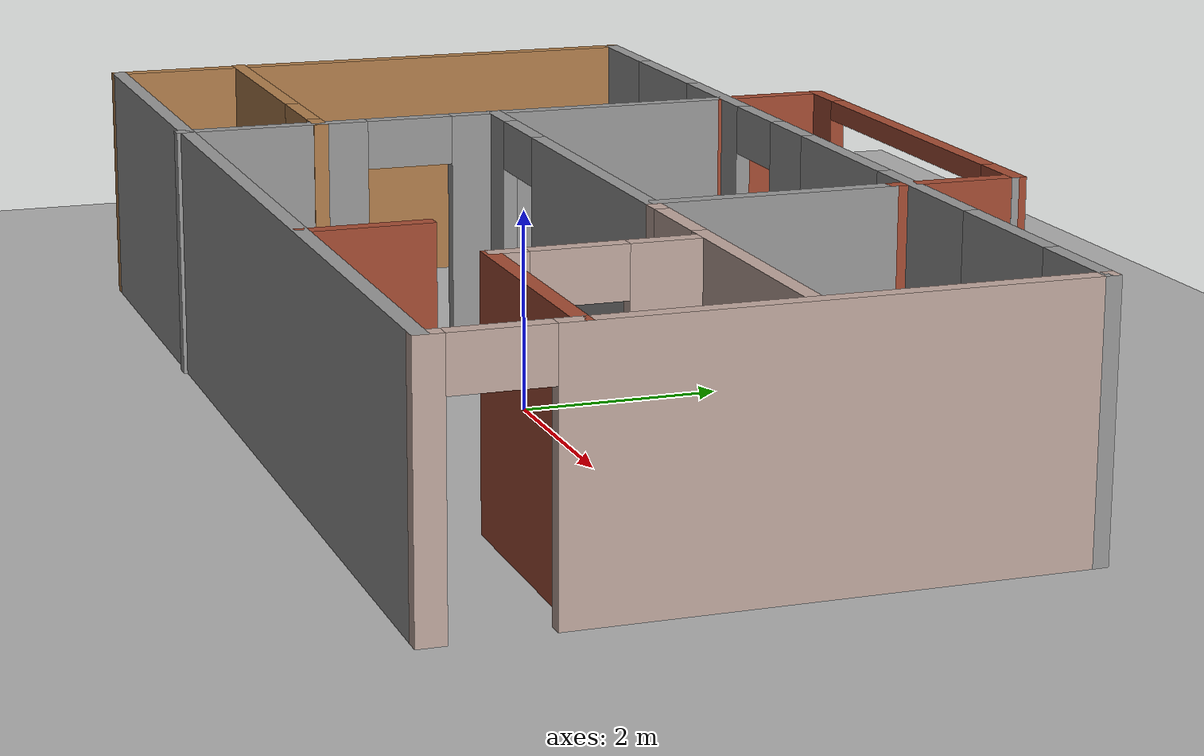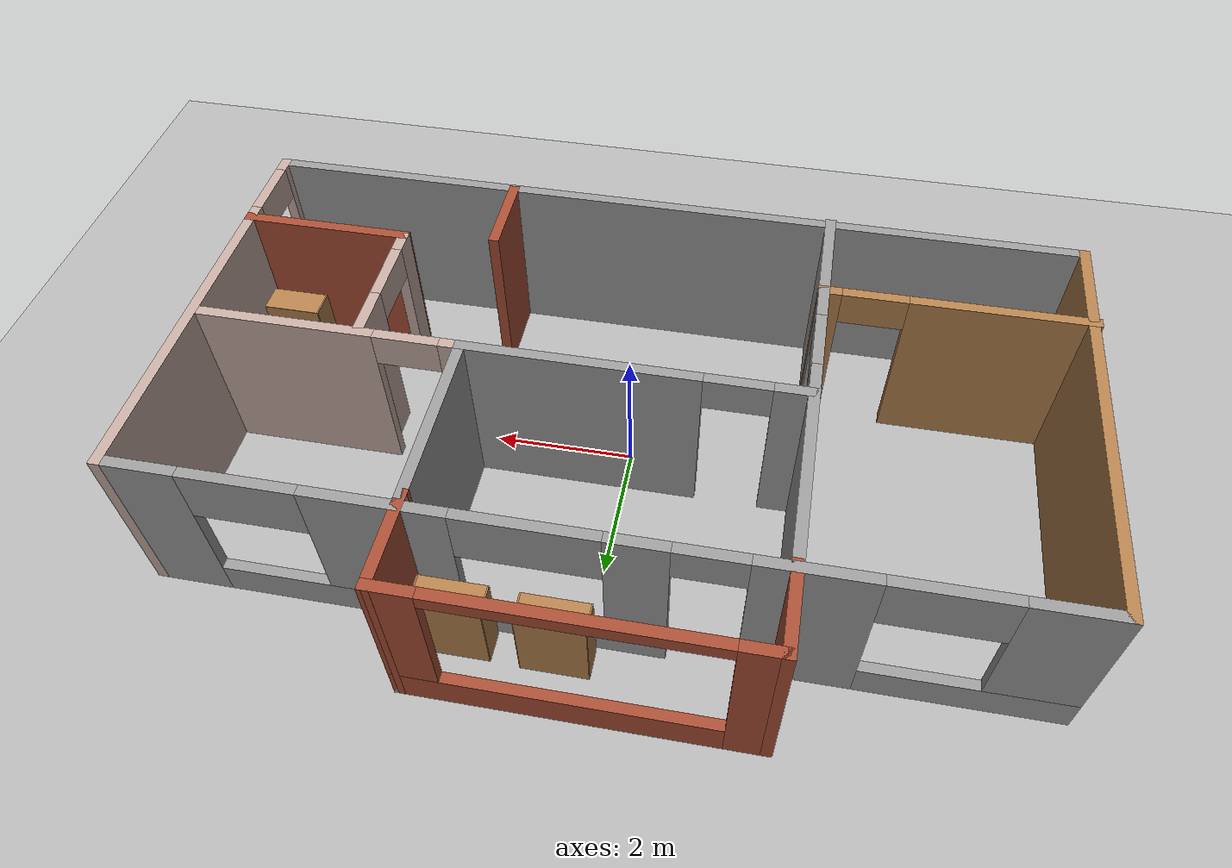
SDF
<sdf version="1.9">
 <world name="default">
  <gravity>0 0 -9.8</gravity>
  <magnetic_field>6e-06 2.3e-05 -4.2e-05</magnetic_field>
  <atmosphere type="adiabatic"/>
  <physics type="ode">
   <max_step_size>0.001</max_step_size>
   <real_time_factor>1</real_time_factor>
   <real_time_update_rate>1000</real_time_update_rate>
  </physics>
  <scene><ambient>0.4 0.4 0.4 1</ambient><background>0.7 0.7 0.7 1</background><shadows>true</shadows></scene>
  <model name="model">
   <pose>-0.072799 0.657395 0 0 -0 0</pose>
   <link name="Wall_0">
    <pose>0.019799 2.41161 0 0 -0 3.14159</pose>
    <visual name="Wall_0_Visual_0">
     <pose>-5.46206 0 1.25 0 -0 0</pose>
     <geometry><box><size>1.07588 0.15 2.5</size></box></geometry>
     <material>
      <script><uri>file://media/materials/scripts/gazebo.material</uri><name>Gazebo/Grey</name></script>
      <ambient>1 1 1 1</ambient>
     </material>
     <meta><layer>0</layer></meta>
    </visual>
    <collision name="Wall_0_Collision_0">
     <geometry><box><size>1.07588 0.15 2.5</size></box></geometry>
     <pose>-5.46206 0 1.25 0 -0 0</pose>
    </collision>
    <visual name="Wall_0_Visual_1">
     <pose>2.60195 0 1.25 0 -0 0</pose>
     <geometry><box><size>1.45849 0.15 2.5</size></box></geometry>
     <material>
      <script><uri>file://media/materials/scripts/gazebo.material</uri><name>Gazebo/Grey</name></script>
      <ambient>1 1 1 1</ambient>
     </material>
     <meta><layer>0</layer></meta>
    </visual>
    <collision name="Wall_0_Collision_1">
     <geometry><box><size>1.45849 0.15 2.5</size></box></geometry>
     <pose>2.60195 0 1.25 0 -0 0</pose>
    </collision>
    <visual name="Wall_0_Visual_2">
     <pose>-1.97571 0 0.25 0 -0 0</pose>
     <geometry><box><size>5.89682 0.15 0.5</size></box></geometry>
     <material>
      <script><uri>file://media/materials/scripts/gazebo.material</uri><name>Gazebo/Grey</name></script>
      <ambient>1 1 1 1</ambient>
     </material>
     <meta><layer>0</layer></meta>
    </visual>
    <collision name="Wall_0_Collision_2">
     <geometry><box><size>5.89682 0.15 0.5</size></box></geometry>
     <pose>-1.97571 0 0.25 0 -0 0</pose>
    </collision>
    <visual name="Wall_0_Visual_3">
     <pose>4.6656 0 0.25 0 -0 0</pose>
     <geometry><box><size>2.66881 0.15 0.5</size></box></geometry>
     <material>
      <script><uri>file://media/materials/scripts/gazebo.material</uri><name>Gazebo/Grey</name></script>
      <ambient>1 1 1 1</ambient>
     </material>
     <meta><layer>0</layer></meta>
    </visual>
    <collision name="Wall_0_Collision_3">
     <geometry><box><size>2.66881 0.15 0.5</size></box></geometry>
     <pose>4.6656 0 0.25 0 -0 0</pose>
    </collision>
    <visual name="Wall_0_Visual_4">
     <pose>-2.5176 0 1.5 0 -0 0</pose>
     <geometry><box><size>1.81303 0.15 2</size></box></geometry>
     <material>
      <script><uri>file://media/materials/scripts/gazebo.material</uri><name>Gazebo/Grey</name></script>
      <ambient>1 1 1 1</ambient>
     </material>
     <meta><layer>0</layer></meta>
    </visual>
    <collision name="Wall_0_Collision_4">
     <geometry><box><size>1.81303 0.15 2</size></box></geometry>
     <pose>-2.5176 0 1.5 0 -0 0</pose>
    </collision>
    <visual name="Wall_0_Visual_5">
     <pose>0.580808 0 1.5 0 -0 0</pose>
     <geometry><box><size>0.783788 0.15 2</size></box></geometry>
     <material>
      <script><uri>file://media/materials/scripts/gazebo.material</uri><name>Gazebo/Grey</name></script>
      <ambient>1 1 1 1</ambient>
     </material>
     <meta><layer>0</layer></meta>
    </visual>
    <collision name="Wall_0_Collision_5">
     <geometry><box><size>0.783788 0.15 2</size></box></geometry>
     <pose>0.580808 0 1.5 0 -0 0</pose>
    </collision>
    <visual name="Wall_0_Visual_6">
     <pose>0.580808 0 1.5 0 -0 0</pose>
     <geometry><box><size>0.783788 0.15 2</size></box></geometry>
     <material>
      <script><uri>file://media/materials/scripts/gazebo.material</uri><name>Gazebo/Grey</name></script>
      <ambient>1 1 1 1</ambient>
     </material>
     <meta><layer>0</layer></meta>
    </visual>
    <collision name="Wall_0_Collision_6">
     <geometry><box><size>0.783788 0.15 2</size></box></geometry>
     <pose>0.580808 0 1.5 0 -0 0</pose>
    </collision>
    <visual name="Wall_0_Visual_7">
     <pose>5.4156 0 1.5 0 -0 0</pose>
     <geometry><box><size>1.16881 0.15 2</size></box></geometry>
     <material>
      <script><uri>file://media/materials/scripts/gazebo.material</uri><name>Gazebo/Grey</name></script>
      <ambient>1 1 1 1</ambient>
     </material>
     <meta><layer>0</layer></meta>
    </visual>
    <collision name="Wall_0_Collision_7">
     <geometry><box><size>1.16881 0.15 2</size></box></geometry>
     <pose>5.4156 0 1.5 0 -0 0</pose>
    </collision>
    <visual name="Wall_0_Visual_8">
     <pose>-4.17412 0 2.1 0 -0 0</pose>
     <geometry><box><size>1.5 0.15 0.8</size></box></geometry>
     <material>
      <script><uri>file://media/materials/scripts/gazebo.material</uri><name>Gazebo/Grey</name></script>
      <ambient>1 1 1 1</ambient>
     </material>
     <meta><layer>0</layer></meta>
    </visual>
    <collision name="Wall_0_Collision_8">
     <geometry><box><size>1.5 0.15 0.8</size></box></geometry>
     <pose>-4.17412 0 2.1 0 -0 0</pose>
    </collision>
    <visual name="Wall_0_Visual_9">
     <pose>4.08119 0 2.1 0 -0 0</pose>
     <geometry><box><size>1.5 0.15 0.8</size></box></geometry>
     <material>
      <script><uri>file://media/materials/scripts/gazebo.material</uri><name>Gazebo/Grey</name></script>
      <ambient>1 1 1 1</ambient>
     </material>
     <meta><layer>0</layer></meta>
    </visual>
    <collision name="Wall_0_Collision_9">
     <geometry><box><size>1.5 0.15 0.8</size></box></geometry>
     <pose>4.08119 0 2.1 0 -0 0</pose>
    </collision>
    <visual name="Wall_0_Visual_10">
     <pose>-0.711086 0 2.1 0 -0 0</pose>
     <geometry><box><size>1.8 0.15 0.8</size></box></geometry>
     <material>
      <script><uri>file://media/materials/scripts/gazebo.material</uri><name>Gazebo/Grey</name></script>
      <ambient>1 1 1 1</ambient>
     </material>
     <meta><layer>0</layer></meta>
    </visual>
    <collision name="Wall_0_Collision_10">
     <geometry><box><size>1.8 0.15 0.8</size></box></geometry>
     <pose>-0.711086 0 2.1 0 -0 0</pose>
    </collision>
    <visual name="Wall_0_Visual_11">
     <pose>1.4227 0 2.25 0 -0 0</pose>
     <geometry><box><size>0.9 0.15 0.5</size></box></geometry>
     <material>
      <script><uri>file://media/materials/scripts/gazebo.material</uri><name>Gazebo/Grey</name></script>
      <ambient>1 1 1 1</ambient>
     </material>
     <meta><layer>0</layer></meta>
    </visual>
    <collision name="Wall_0_Collision_11">
     <geometry><box><size>0.9 0.15 0.5</size></box></geometry>
     <pose>1.4227 0 2.25 0 -0 0</pose>
    </collision>
    <visual name="Wall_0_Visual_12">
     <pose>1.4227 0 2.25 0 -0 0</pose>
     <geometry><box><size>0.9 0.15 0.5</size></box></geometry>
     <material>
      <script><uri>file://media/materials/scripts/gazebo.material</uri><name>Gazebo/Grey</name></script>
      <ambient>1 1 1 1</ambient>
     </material>
     <meta><layer>0</layer></meta>
    </visual>
    <collision name="Wall_0_Collision_12">
     <geometry><box><size>0.9 0.15 0.5</size></box></geometry>
     <pose>1.4227 0 2.25 0 -0 0</pose>
    </collision>
    <inertial>
     <mass>1</mass>
     <inertia><ixx>1</ixx><ixy>0</ixy><ixz>0</ixz><iyy>1</iyy><iyz>0</iyz><izz>1</izz></inertia>
    </inertial>
   </link>
   <link name="Wall_15">
    <pose>3.63468 -1.16614 0 0 0 -1.5708</pose>
    <visual name="Wall_15_Visual_0">
     <pose>-0.627818 0 1.25 0 -0 0</pose>
     <geometry><box><size>0.744364 0.15 2.5</size></box></geometry>
     <material>
      <script><uri>file://media/materials/scripts/gazebo.material</uri><name>Gazebo/Grey</name></script>
      <ambient>0.760784 0.662745 0.627451 1</ambient>
     </material>
     <meta><layer>0</layer></meta>
    </visual>
    <collision name="Wall_15_Collision_0">
     <geometry><box><size>0.744364 0.15 2.5</size></box></geometry>
     <pose>-0.627818 0 1.25 0 -0 0</pose>
    </collision>
    <visual name="Wall_15_Visual_1">
     <pose>0.822182 0 1.25 0 -0 0</pose>
     <geometry><box><size>0.355636 0.15 2.5</size></box></geometry>
     <material>
      <script><uri>file://media/materials/scripts/gazebo.material</uri><name>Gazebo/Grey</name></script>
      <ambient>0.760784 0.662745 0.627451 1</ambient>
     </material>
     <meta><layer>0</layer></meta>
    </visual>
    <collision name="Wall_15_Collision_1">
     <geometry><box><size>0.355636 0.15 2.5</size></box></geometry>
     <pose>0.822182 0 1.25 0 -0 0</pose>
    </collision>
    <visual name="Wall_15_Visual_2">
     <pose>0.194364 0 2.25 0 -0 0</pose>
     <geometry><box><size>0.9 0.15 0.5</size></box></geometry>
     <material>
      <script><uri>file://media/materials/scripts/gazebo.material</uri><name>Gazebo/Grey</name></script>
      <ambient>0.760784 0.662745 0.627451 1</ambient>
     </material>
     <meta><layer>0</layer></meta>
    </visual>
    <collision name="Wall_15_Collision_2">
     <geometry><box><size>0.9 0.15 0.5</size></box></geometry>
     <pose>0.194364 0 2.25 0 -0 0</pose>
    </collision>
    <inertial>
     <mass>1</mass>
     <inertia><ixx>1</ixx><ixy>0</ixy><ixz>0</ixz><iyy>1</iyy><iyz>0</iyz><izz>1</izz></inertia>
    </inertial>
   </link>
   <link name="Wall_16">
    <collision name="Wall_16_Collision">
     <geometry><box><size>2.45988 0.15 2.5</size></box></geometry>
     <pose>0 0 1.25 0 -0 0</pose>
    </collision>
    <visual name="Wall_16_Visual">
     <pose>0 0 1.25 0 -0 0</pose>
     <geometry><box><size>2.45988 0.15 2.5</size></box></geometry>
     <material>
      <script><uri>file://media/materials/scripts/gazebo.material</uri><name>Gazebo/Bricks</name></script>
      <ambient>1 1 1 1</ambient>
     </material>
     <meta><layer>0</layer></meta>
    </visual>
    <pose>4.78962 -2.12612 0 0 -0 0</pose>
    <inertial>
     <mass>1</mass>
     <inertia><ixx>1</ixx><ixy>0</ixy><ixz>0</ixz><iyy>1</iyy><iyz>0</iyz><izz>1</izz></inertia>
    </inertial>
   </link>
   <link name="Wall_2">
    <collision name="Wall_2_Collision">
     <geometry><box><size>6 0.15 2.5</size></box></geometry>
     <pose>0 0 1.25 0 -0 0</pose>
    </collision>
    <visual name="Wall_2_Visual">
     <pose>0 0 1.25 0 -0 0</pose>
     <geometry><box><size>6 0.15 2.5</size></box></geometry>
     <material>
      <script><uri>file://media/materials/scripts/gazebo.material</uri><name>Gazebo/Wood</name></script>
      <ambient>1 1 1 1</ambient>
     </material>
     <meta><layer>0</layer></meta>
    </visual>
    <pose>-5.9052 -0.513395 0 0 0 -1.5708</pose>
    <inertial>
     <mass>1</mass>
     <inertia><ixx>1</ixx><ixy>0</ixy><ixz>0</ixz><iyy>1</iyy><iyz>0</iyz><izz>1</izz></inertia>
    </inertial>
   </link>
   <link name="Wall_24">
    <collision name="Wall_24_Collision">
     <geometry><box><size>2.5 0.15 2.5</size></box></geometry>
     <pose>0 0 1.25 0 -0 0</pose>
    </collision>
    <visual name="Wall_24_Visual">
     <pose>0 0 1.25 0 -0 0</pose>
     <geometry><box><size>2.5 0.15 2.5</size></box></geometry>
     <material>
      <script><uri>file://media/materials/scripts/gazebo.material</uri><name>Gazebo/Grey</name></script>
      <ambient>1 1 1 1</ambient>
     </material>
     <meta><layer>0</layer></meta>
    </visual>
    <pose>2.23564 1.06753 0 0 0 -1.57093</pose>
    <inertial>
     <mass>1</mass>
     <inertia><ixx>1</ixx><ixy>0</ixy><ixz>0</ixz><iyy>1</iyy><iyz>0</iyz><izz>1</izz></inertia>
    </inertial>
   </link>
   <link name="Wall_26">
    <collision name="Wall_26_Collision">
     <geometry><box><size>1.25 0.15 2.5</size></box></geometry>
     <pose>0 0 1.25 0 -0 0</pose>
    </collision>
    <visual name="Wall_26_Visual">
     <pose>0 0 1.25 0 -0 0</pose>
     <geometry><box><size>1.25 0.15 2.5</size></box></geometry>
     <material>
      <script><uri>file://media/materials/scripts/gazebo.material</uri><name>Gazebo/Bricks</name></script>
      <ambient>1 1 1 1</ambient>
     </material>
     <meta><layer>0</layer></meta>
    </visual>
    <pose>2.34042 -2.86011 0 0 0 -1.5708</pose>
    <inertial>
     <mass>1</mass>
     <inertia><ixx>1</ixx><ixy>0</ixy><ixz>0</ixz><iyy>1</iyy><iyz>0</iyz><izz>1</izz></inertia>
    </inertial>
   </link>
   <link name="Wall_28">
    <collision name="Wall_28_Collision">
     <geometry><box><size>1.25 0.15 2.5</size></box></geometry>
     <pose>0 0 1.25 0 -0 0</pose>
    </collision>
    <visual name="Wall_28_Visual">
     <pose>0 0 1.25 0 -0 0</pose>
     <geometry><box><size>1.25 0.15 2.5</size></box></geometry>
     <material>
      <script><uri>file://media/materials/scripts/gazebo.material</uri><name>Gazebo/Bricks</name></script>
      <ambient>1 1 1 1</ambient>
     </material>
     <meta><layer>0</layer></meta>
    </visual>
    <pose>-2.3542 2.92461 0 0 -0 1.5708</pose>
    <inertial>
     <mass>1</mass>
     <inertia><ixx>1</ixx><ixy>0</ixy><ixz>0</ixz><iyy>1</iyy><iyz>0</iyz><izz>1</izz></inertia>
    </inertial>
   </link>
   <link name="Wall_29">
    <pose>-0.054201 3.4746 0 0 -0 0</pose>
    <visual name="Wall_29_Visual_0">
     <pose>-2.0721 0 1.25 0 -0 0</pose>
     <geometry><box><size>0.605802 0.15 2.5</size></box></geometry>
     <material>
      <script><uri>file://media/materials/scripts/gazebo.material</uri><name>Gazebo/Bricks</name></script>
      <ambient>1 1 1 1</ambient>
     </material>
     <meta><layer>0</layer></meta>
    </visual>
    <collision name="Wall_29_Collision_0">
     <geometry><box><size>0.605802 0.15 2.5</size></box></geometry>
     <pose>-2.0721 0 1.25 0 -0 0</pose>
    </collision>
    <visual name="Wall_29_Visual_1">
     <pose>0.302901 0 0.25 0 -0 0</pose>
     <geometry><box><size>4.1442 0.15 0.5</size></box></geometry>
     <material>
      <script><uri>file://media/materials/scripts/gazebo.material</uri><name>Gazebo/Bricks</name></script>
      <ambient>1 1 1 1</ambient>
     </material>
     <meta><layer>0</layer></meta>
    </visual>
    <collision name="Wall_29_Collision_1">
     <geometry><box><size>4.1442 0.15 0.5</size></box></geometry>
     <pose>0.302901 0 0.25 0 -0 0</pose>
    </collision>
    <visual name="Wall_29_Visual_2">
     <pose>2.0529 0 1.5 0 -0 0</pose>
     <geometry><box><size>0.644198 0.15 2</size></box></geometry>
     <material>
      <script><uri>file://media/materials/scripts/gazebo.material</uri><name>Gazebo/Bricks</name></script>
      <ambient>1 1 1 1</ambient>
     </material>
     <meta><layer>0</layer></meta>
    </visual>
    <collision name="Wall_29_Collision_2">
     <geometry><box><size>0.644198 0.15 2</size></box></geometry>
     <pose>2.0529 0 1.5 0 -0 0</pose>
    </collision>
    <visual name="Wall_29_Visual_3">
     <pose>-0.019198 0 2.4 0 -0 0</pose>
     <geometry><box><size>3.5 0.15 0.2</size></box></geometry>
     <material>
      <script><uri>file://media/materials/scripts/gazebo.material</uri><name>Gazebo/Bricks</name></script>
      <ambient>1 1 1 1</ambient>
     </material>
     <meta><layer>0</layer></meta>
    </visual>
    <collision name="Wall_29_Collision_3">
     <geometry><box><size>3.5 0.15 0.2</size></box></geometry>
     <pose>-0.019198 0 2.4 0 -0 0</pose>
    </collision>
    <inertial>
     <mass>1</mass>
     <inertia><ixx>1</ixx><ixy>0</ixy><ixz>0</ixz><iyy>1</iyy><iyz>0</iyz><izz>1</izz></inertia>
    </inertial>
   </link>
   <link name="Wall_3">
    <collision name="Wall_3_Collision">
     <geometry><box><size>12 0.15 2.5</size></box></geometry>
     <pose>0 0 1.25 0 -0 0</pose>
    </collision>
    <visual name="Wall_3_Visual">
     <pose>0 0 1.25 0 -0 0</pose>
     <geometry><box><size>12 0.15 2.5</size></box></geometry>
     <material>
      <script><uri>file://media/materials/scripts/gazebo.material</uri><name>Gazebo/Grey</name></script>
      <ambient>1 1 1 1</ambient>
     </material>
     <meta><layer>0</layer></meta>
    </visual>
    <pose>0.019799 -3.43839 0 0 -0 0</pose>
    <inertial>
     <mass>1</mass>
     <inertia><ixx>1</ixx><ixy>0</ixy><ixz>0</ixz><iyy>1</iyy><iyz>0</iyz><izz>1</izz></inertia>
    </inertial>
   </link>
   <link name="Wall_30">
    <collision name="Wall_30_Collision">
     <geometry><box><size>0.15 0.15 2.5</size></box></geometry>
     <pose>0 0 1.25 0 -0 0</pose>
    </collision>
    <visual name="Wall_30_Visual">
     <pose>0 0 1.25 0 -0 0</pose>
     <geometry><box><size>0.15 0.15 2.5</size></box></geometry>
     <material>
      <script><uri>file://media/materials/scripts/gazebo.material</uri><name>Gazebo/Grey</name></script>
      <ambient>1 1 1 1</ambient>
     </material>
     <meta><layer>0</layer></meta>
    </visual>
    <pose>2.2458 3.4746 0 0 -0 0</pose>
    <inertial>
     <mass>1</mass>
     <inertia><ixx>1</ixx><ixy>0</ixy><ixz>0</ixz><iyy>1</iyy><iyz>0</iyz><izz>1</izz></inertia>
    </inertial>
   </link>
   <link name="Wall_32">
    <collision name="Wall_32_Collision">
     <geometry><box><size>1.38231 0.15 2.5</size></box></geometry>
     <pose>0 0 1.25 0 -0 0</pose>
    </collision>
    <visual name="Wall_32_Visual">
     <pose>0 0 1.25 0 -0 0</pose>
     <geometry><box><size>1.38231 0.15 2.5</size></box></geometry>
     <material>
      <script><uri>file://media/materials/scripts/gazebo.material</uri><name>Gazebo/Bricks</name></script>
      <ambient>1 1 1 1</ambient>
     </material>
     <meta><layer>0</layer></meta>
    </visual>
    <pose>2.2408 2.8586 0 0 0 -1.57891</pose>
    <inertial>
     <mass>1</mass>
     <inertia><ixx>1</ixx><ixy>0</ixy><ixz>0</ixz><iyy>1</iyy><iyz>0</iyz><izz>1</izz></inertia>
    </inertial>
   </link>
   <link name="Wall_34">
    <pose>4.07341 -0.17118 0 0 -0 3.14159</pose>
    <visual name="Wall_34_Visual_0">
     <pose>-0.610825 0 1.25 0 -0 0</pose>
     <geometry><box><size>2.52835 0.15 2.5</size></box></geometry>
     <material>
      <script><uri>file://media/materials/scripts/gazebo.material</uri><name>Gazebo/Grey</name></script>
      <ambient>0.760784 0.662745 0.627451 1</ambient>
     </material>
     <meta><layer>0</layer></meta>
    </visual>
    <collision name="Wall_34_Collision_0">
     <geometry><box><size>2.52835 0.15 2.5</size></box></geometry>
     <pose>-0.610825 0 1.25 0 -0 0</pose>
    </collision>
    <visual name="Wall_34_Visual_1">
     <pose>1.71418 0 1.25 0 -0 0</pose>
     <geometry><box><size>0.32165 0.15 2.5</size></box></geometry>
     <material>
      <script><uri>file://media/materials/scripts/gazebo.material</uri><name>Gazebo/Grey</name></script>
      <ambient>0.760784 0.662745 0.627451 1</ambient>
     </material>
     <meta><layer>0</layer></meta>
    </visual>
    <collision name="Wall_34_Collision_1">
     <geometry><box><size>0.32165 0.15 2.5</size></box></geometry>
     <pose>1.71418 0 1.25 0 -0 0</pose>
    </collision>
    <visual name="Wall_34_Visual_2">
     <pose>1.10335 0 2.25 0 -0 0</pose>
     <geometry><box><size>0.9 0.15 0.5</size></box></geometry>
     <material>
      <script><uri>file://media/materials/scripts/gazebo.material</uri><name>Gazebo/Grey</name></script>
      <ambient>0.760784 0.662745 0.627451 1</ambient>
     </material>
     <meta><layer>0</layer></meta>
    </visual>
    <collision name="Wall_34_Collision_2">
     <geometry><box><size>0.9 0.15 0.5</size></box></geometry>
     <pose>1.10335 0 2.25 0 -0 0</pose>
    </collision>
    <inertial>
     <mass>1</mass>
     <inertia><ixx>1</ixx><ixy>0</ixy><ixz>0</ixz><iyy>1</iyy><iyz>0</iyz><izz>1</izz></inertia>
    </inertial>
   </link>
   <link name="Wall_35">
    <pose>-0.06157 -0.17118 0 0 -0 3.14159</pose>
    <visual name="Wall_35_Visual_0">
     <pose>-0.742057 0 1.25 0 -0 0</pose>
     <geometry><box><size>3.26589 0.15 2.5</size></box></geometry>
     <material>
      <script><uri>file://media/materials/scripts/gazebo.material</uri><name>Gazebo/Grey</name></script>
      <ambient>1 1 1 1</ambient>
     </material>
     <meta><layer>0</layer></meta>
    </visual>
    <collision name="Wall_35_Collision_0">
     <geometry><box><size>3.26589 0.15 2.5</size></box></geometry>
     <pose>-0.742057 0 1.25 0 -0 0</pose>
    </collision>
    <visual name="Wall_35_Visual_1">
     <pose>2.08294 0 1.25 0 -0 0</pose>
     <geometry><box><size>0.584114 0.15 2.5</size></box></geometry>
     <material>
      <script><uri>file://media/materials/scripts/gazebo.material</uri><name>Gazebo/Grey</name></script>
      <ambient>1 1 1 1</ambient>
     </material>
     <meta><layer>0</layer></meta>
    </visual>
    <collision name="Wall_35_Collision_1">
     <geometry><box><size>0.584114 0.15 2.5</size></box></geometry>
     <pose>2.08294 0 1.25 0 -0 0</pose>
    </collision>
    <visual name="Wall_35_Visual_2">
     <pose>1.34089 0 2.25 0 -0 0</pose>
     <geometry><box><size>0.9 0.15 0.5</size></box></geometry>
     <material>
      <script><uri>file://media/materials/scripts/gazebo.material</uri><name>Gazebo/Grey</name></script>
      <ambient>1 1 1 1</ambient>
     </material>
     <meta><layer>0</layer></meta>
    </visual>
    <collision name="Wall_35_Collision_2">
     <geometry><box><size>0.9 0.15 0.5</size></box></geometry>
     <pose>1.34089 0 2.25 0 -0 0</pose>
    </collision>
    <inertial>
     <mass>1</mass>
     <inertia><ixx>1</ixx><ixy>0</ixy><ixz>0</ixz><iyy>1</iyy><iyz>0</iyz><izz>1</izz></inertia>
    </inertial>
   </link>
   <link name="Wall_4">
    <pose>5.9448 -0.513395 0 0 -0 1.5708</pose>
    <visual name="Wall_4_Visual_0">
     <pose>-2.8658 0 1.25 0 -0 0</pose>
     <geometry><box><size>0.268399 0.15 2.5</size></box></geometry>
     <material>
      <script><uri>file://media/materials/scripts/gazebo.material</uri><name>Gazebo/Grey</name></script>
      <ambient>0.760784 0.662745 0.627451 1</ambient>
     </material>
     <meta><layer>0</layer></meta>
    </visual>
    <collision name="Wall_4_Collision_0">
     <geometry><box><size>0.268399 0.15 2.5</size></box></geometry>
     <pose>-2.8658 0 1.25 0 -0 0</pose>
    </collision>
    <visual name="Wall_4_Visual_1">
     <pose>0.584199 0 1.25 0 -0 0</pose>
     <geometry><box><size>4.8316 0.15 2.5</size></box></geometry>
     <material>
      <script><uri>file://media/materials/scripts/gazebo.material</uri><name>Gazebo/Grey</name></script>
      <ambient>0.760784 0.662745 0.627451 1</ambient>
     </material>
     <meta><layer>0</layer></meta>
    </visual>
    <collision name="Wall_4_Collision_1">
     <geometry><box><size>4.8316 0.15 2.5</size></box></geometry>
     <pose>0.584199 0 1.25 0 -0 0</pose>
    </collision>
    <visual name="Wall_4_Visual_2">
     <pose>-2.2816 0 2.25 0 -0 0</pose>
     <geometry><box><size>0.9 0.15 0.5</size></box></geometry>
     <material>
      <script><uri>file://media/materials/scripts/gazebo.material</uri><name>Gazebo/Grey</name></script>
      <ambient>0.760784 0.662745 0.627451 1</ambient>
     </material>
     <meta><layer>0</layer></meta>
    </visual>
    <collision name="Wall_4_Collision_2">
     <geometry><box><size>0.9 0.15 0.5</size></box></geometry>
     <pose>-2.2816 0 2.25 0 -0 0</pose>
    </collision>
    <inertial>
     <mass>1</mass>
     <inertia><ixx>1</ixx><ixy>0</ixy><ixz>0</ixz><iyy>1</iyy><iyz>0</iyz><izz>1</izz></inertia>
    </inertial>
   </link>
   <link name="Wall_6">
    <pose>-2.35411 -0.550342 0 0 0 -1.57076</pose>
    <visual name="Wall_6_Visual_0">
     <pose>-1.44227 0 1.25 0 -0 0</pose>
     <geometry><box><size>3.11546 0.15 2.5</size></box></geometry>
     <material>
      <script><uri>file://media/materials/scripts/gazebo.material</uri><name>Gazebo/Grey</name></script>
      <ambient>1 1 1 1</ambient>
     </material>
     <meta><layer>0</layer></meta>
    </visual>
    <collision name="Wall_6_Collision_0">
     <geometry><box><size>3.11546 0.15 2.5</size></box></geometry>
     <pose>-1.44227 0 1.25 0 -0 0</pose>
    </collision>
    <visual name="Wall_6_Visual_1">
     <pose>2.00773 0 1.25 0 -0 0</pose>
     <geometry><box><size>1.98454 0.15 2.5</size></box></geometry>
     <material>
      <script><uri>file://media/materials/scripts/gazebo.material</uri><name>Gazebo/Grey</name></script>
      <ambient>1 1 1 1</ambient>
     </material>
     <meta><layer>0</layer></meta>
    </visual>
    <collision name="Wall_6_Collision_1">
     <geometry><box><size>1.98454 0.15 2.5</size></box></geometry>
     <pose>2.00773 0 1.25 0 -0 0</pose>
    </collision>
    <visual name="Wall_6_Visual_2">
     <pose>0.565456 0 2.25 0 -0 0</pose>
     <geometry><box><size>0.9 0.15 0.5</size></box></geometry>
     <material>
      <script><uri>file://media/materials/scripts/gazebo.material</uri><name>Gazebo/Grey</name></script>
      <ambient>1 1 1 1</ambient>
     </material>
     <meta><layer>0</layer></meta>
    </visual>
    <collision name="Wall_6_Collision_2">
     <geometry><box><size>0.9 0.15 0.5</size></box></geometry>
     <pose>0.565456 0 2.25 0 -0 0</pose>
    </collision>
    <inertial>
     <mass>1</mass>
     <inertia><ixx>1</ixx><ixy>0</ixy><ixz>0</ixz><iyy>1</iyy><iyz>0</iyz><izz>1</izz></inertia>
    </inertial>
   </link>
   <link name="Wall_8">
    <pose>-4.1448 -2.06168 0 0 -0 0</pose>
    <visual name="Wall_8_Visual_0">
     <pose>-0.613361 0 1.25 0 -0 0</pose>
     <geometry><box><size>2.52328 0.15 2.5</size></box></geometry>
     <material>
      <script><uri>file://media/materials/scripts/gazebo.material</uri><name>Gazebo/Wood</name></script>
      <ambient>1 1 1 1</ambient>
     </material>
     <meta><layer>0</layer></meta>
    </visual>
    <collision name="Wall_8_Collision_0">
     <geometry><box><size>2.52328 0.15 2.5</size></box></geometry>
     <pose>-0.613361 0 1.25 0 -0 0</pose>
    </collision>
    <visual name="Wall_8_Visual_1">
     <pose>1.71164 0 1.25 0 -0 0</pose>
     <geometry><box><size>0.326722 0.15 2.5</size></box></geometry>
     <material>
      <script><uri>file://media/materials/scripts/gazebo.material</uri><name>Gazebo/Wood</name></script>
      <ambient>1 1 1 1</ambient>
     </material>
     <meta><layer>0</layer></meta>
    </visual>
    <collision name="Wall_8_Collision_1">
     <geometry><box><size>0.326722 0.15 2.5</size></box></geometry>
     <pose>1.71164 0 1.25 0 -0 0</pose>
    </collision>
    <visual name="Wall_8_Visual_2">
     <pose>1.09828 0 2.25 0 -0 0</pose>
     <geometry><box><size>0.9 0.15 0.5</size></box></geometry>
     <material>
      <script><uri>file://media/materials/scripts/gazebo.material</uri><name>Gazebo/Wood</name></script>
      <ambient>1 1 1 1</ambient>
     </material>
     <meta><layer>0</layer></meta>
    </visual>
    <collision name="Wall_8_Collision_2">
     <geometry><box><size>0.9 0.15 0.5</size></box></geometry>
     <pose>1.09828 0 2.25 0 -0 0</pose>
    </collision>
    <inertial>
     <mass>1</mass>
     <inertia><ixx>1</ixx><ixy>0</ixy><ixz>0</ixz><iyy>1</iyy><iyz>0</iyz><izz>1</izz></inertia>
    </inertial>
   </link>
   <static>true</static>
  </model>
  <model name="ground_plane">
   <static>true</static>
   <link name="link">
    <collision name="collision">
     <geometry><plane><normal>0 0 1</normal><size>100 100</size></plane></geometry>
     <surface><friction><ode><mu>100</mu><mu2>50</mu2></ode></friction></surface>
    </collision>
    <visual name="visual">
     <cast_shadows>false</cast_shadows>
     <geometry><plane><normal>0 0 1</normal><size>100 100</size></plane></geometry>
     <material>
      <ambient>0.3 0.3 0.3 1</ambient>
      <diffuse>0.7 0.7 0.7 1</diffuse>
      <specular>0.01 0.01 0.01 1</specular>
     </material>
    </visual>
    <inertial>
     <mass>1</mass>
     <inertia><ixx>1</ixx><ixy>0</ixy><ixz>0</ixz><iyy>1</iyy><iyz>0</iyz><izz>1</izz></inertia>
    </inertial>
   </link>
   <pose>1.96033 -1.20822 0 0 -0 0</pose>
  </model>
  <model name="Bookshelf">
   <static>true</static>
   <link name="link">
    <inertial>
     <mass>1</mass>
     <inertia><ixx>1</ixx><ixy>0</ixy><ixz>0</ixz><iyy>1</iyy><iyz>0</iyz><izz>1</izz></inertia>
    </inertial>
    <collision name="back">
     <pose>0 0.005 0.6 0 0 0</pose>
     <geometry><box><size>0.9 0.01 1.2</size></box></geometry>
    </collision>
    <visual name="visual1">
     <pose>0 0.005 0.6 0 0 0</pose>
     <geometry><box><size>0.9 0.01 1.2</size></box></geometry>
     <material>
      <diffuse>1 1 1 1</diffuse>
      <script><uri>file://media/materials/scripts/gazebo.material</uri><name>Gazebo/Wood</name></script>
      <pbr>
       <metal>
        <albedo_map>https://fuel.gazebosim.org/1.0/openrobotics/models/bookshelf/4/files/bookshelf_diffuse.jpg</albedo_map>
       </metal>
      </pbr>
     </material>
    </visual>
    <collision name="left_side">
     <pose>0.45 -0.195 0.6 0 0 0</pose>
     <geometry><box><size>0.02 0.4 1.2</size></box></geometry>
    </collision>
    <visual name="visual2">
     <pose>0.45 -0.195 0.6 0 0 0</pose>
     <geometry><box><size>0.02 0.4 1.2</size></box></geometry>
     <material>
      <diffuse>1 1 1 1</diffuse>
      <script><uri>file://media/materials/scripts/gazebo.material</uri><name>Gazebo/Wood</name></script>
      <pbr>
       <metal>
        <albedo_map>https://fuel.gazebosim.org/1.0/openrobotics/models/bookshelf/4/files/bookshelf_diffuse.jpg</albedo_map>
       </metal>
      </pbr>
     </material>
    </visual>
    <collision name="right_side">
     <pose>-0.45 -0.195 0.6 0 0 0</pose>
     <geometry><box><size>0.02 0.4 1.2</size></box></geometry>
    </collision>
    <visual name="visual3">
     <pose>-0.45 -0.195 0.6 0 0 0</pose>
     <geometry><box><size>0.02 0.4 1.2</size></box></geometry>
     <material>
      <diffuse>1 1 1 1</diffuse>
      <script><uri>file://media/materials/scripts/gazebo.material</uri><name>Gazebo/Wood</name></script>
      <pbr>
       <metal>
        <albedo_map>https://fuel.gazebosim.org/1.0/openrobotics/models/bookshelf/4/files/bookshelf_diffuse.jpg</albedo_map>
       </metal>
      </pbr>
     </material>
    </visual>
    <collision name="bottom">
     <pose>0 -0.195 0.03 0 0 0</pose>
     <geometry><box><size>0.88 0.4 0.06</size></box></geometry>
    </collision>
    <visual name="visual4">
     <pose>0 -0.195 0.03 0 0 0</pose>
     <geometry><box><size>0.88 0.4 0.06</size></box></geometry>
     <material>
      <diffuse>1 1 1 1</diffuse>
      <script><uri>file://media/materials/scripts/gazebo.material</uri><name>Gazebo/Wood</name></script>
      <pbr>
       <metal>
        <albedo_map>https://fuel.gazebosim.org/1.0/openrobotics/models/bookshelf/4/files/bookshelf_diffuse.jpg</albedo_map>
       </metal>
      </pbr>
     </material>
    </visual>
    <collision name="top">
     <pose>0 -0.195 1.19 0 0 0</pose>
     <geometry><box><size>0.88 0.4 0.02</size></box></geometry>
    </collision>
    <visual name="visual5">
     <pose>0 -0.195 1.19 0 0 0</pose>
     <geometry><box><size>0.88 0.4 0.02</size></box></geometry>
     <material>
      <diffuse>1 1 1 1</diffuse>
      <script><uri>file://media/materials/scripts/gazebo.material</uri><name>Gazebo/Wood</name></script>
      <pbr>
       <metal>
        <albedo_map>https://fuel.gazebosim.org/1.0/openrobotics/models/bookshelf/4/files/bookshelf_diffuse.jpg</albedo_map>
       </metal>
      </pbr>
     </material>
    </visual>
    <collision name="low_shelf">
     <pose>0 -0.195 0.43 0 0 0</pose>
     <geometry><box><size>0.88 0.4 0.02</size></box></geometry>
    </collision>
    <visual name="visual6">
     <pose>0 -0.195 0.43 0 0 0</pose>
     <geometry><box><size>0.88 0.4 0.02</size></box></geometry>
     <material>
      <diffuse>1 1 1 1</diffuse>
      <script><uri>file://media/materials/scripts/gazebo.material</uri><name>Gazebo/Wood</name></script>
      <pbr>
       <metal>
        <albedo_map>https://fuel.gazebosim.org/1.0/openrobotics/models/bookshelf/4/files/bookshelf_diffuse.jpg</albedo_map>
       </metal>
      </pbr>
     </material>
    </visual>
    <collision name="high_shelf">
     <pose>0 -0.195 0.8 0 0 0</pose>
     <geometry><box><size>0.88 0.4 0.02</size></box></geometry>
    </collision>
    <visual name="visual7">
     <pose>0 -0.195 0.8 0 0 0</pose>
     <geometry><box><size>0.88 0.4 0.02</size></box></geometry>
     <material>
      <diffuse>1 1 1 1</diffuse>
      <script><uri>file://media/materials/scripts/gazebo.material</uri><name>Gazebo/Wood</name></script>
      <pbr>
       <metal>
        <albedo_map>https://fuel.gazebosim.org/1.0/openrobotics/models/bookshelf/4/files/bookshelf_diffuse.jpg</albedo_map>
       </metal>
      </pbr>
     </material>
    </visual>
   </link>
   <pose>2.77616 2.89925 0 0 -0 0</pose>
  </model>
  <model name="Bookshelf_0">
   <static>true</static>
   <link name="link">
    <inertial>
     <mass>1</mass>
     <inertia><ixx>1</ixx><ixy>0</ixy><ixz>0</ixz><iyy>1</iyy><iyz>0</iyz><izz>1</izz></inertia>
    </inertial>
    <collision name="back">
     <pose>0 0.005 0.6 0 0 0</pose>
     <geometry><box><size>0.9 0.01 1.2</size></box></geometry>
    </collision>
    <visual name="visual1">
     <pose>0 0.005 0.6 0 0 0</pose>
     <geometry><box><size>0.9 0.01 1.2</size></box></geometry>
     <material>
      <diffuse>1 1 1 1</diffuse>
      <script><uri>file://media/materials/scripts/gazebo.material</uri><name>Gazebo/Wood</name></script>
      <pbr>
       <metal>
        <albedo_map>https://fuel.gazebosim.org/1.0/openrobotics/models/bookshelf/4/files/bookshelf_diffuse.jpg</albedo_map>
       </metal>
      </pbr>
     </material>
    </visual>
    <collision name="left_side">
     <pose>0.45 -0.195 0.6 0 0 0</pose>
     <geometry><box><size>0.02 0.4 1.2</size></box></geometry>
    </collision>
    <visual name="visual2">
     <pose>0.45 -0.195 0.6 0 0 0</pose>
     <geometry><box><size>0.02 0.4 1.2</size></box></geometry>
     <material>
      <diffuse>1 1 1 1</diffuse>
      <script><uri>file://media/materials/scripts/gazebo.material</uri><name>Gazebo/Wood</name></script>
      <pbr>
       <metal>
        <albedo_map>https://fuel.gazebosim.org/1.0/openrobotics/models/bookshelf/4/files/bookshelf_diffuse.jpg</albedo_map>
       </metal>
      </pbr>
     </material>
    </visual>
    <collision name="right_side">
     <pose>-0.45 -0.195 0.6 0 0 0</pose>
     <geometry><box><size>0.02 0.4 1.2</size></box></geometry>
    </collision>
    <visual name="visual3">
     <pose>-0.45 -0.195 0.6 0 0 0</pose>
     <geometry><box><size>0.02 0.4 1.2</size></box></geometry>
     <material>
      <diffuse>1 1 1 1</diffuse>
      <script><uri>file://media/materials/scripts/gazebo.material</uri><name>Gazebo/Wood</name></script>
      <pbr>
       <metal>
        <albedo_map>https://fuel.gazebosim.org/1.0/openrobotics/models/bookshelf/4/files/bookshelf_diffuse.jpg</albedo_map>
       </metal>
      </pbr>
     </material>
    </visual>
    <collision name="bottom">
     <pose>0 -0.195 0.03 0 0 0</pose>
     <geometry><box><size>0.88 0.4 0.06</size></box></geometry>
    </collision>
    <visual name="visual4">
     <pose>0 -0.195 0.03 0 0 0</pose>
     <geometry><box><size>0.88 0.4 0.06</size></box></geometry>
     <material>
      <diffuse>1 1 1 1</diffuse>
      <script><uri>file://media/materials/scripts/gazebo.material</uri><name>Gazebo/Wood</name></script>
      <pbr>
       <metal>
        <albedo_map>https://fuel.gazebosim.org/1.0/openrobotics/models/bookshelf/4/files/bookshelf_diffuse.jpg</albedo_map>
       </metal>
      </pbr>
     </material>
    </visual>
    <collision name="top">
     <pose>0 -0.195 1.19 0 0 0</pose>
     <geometry><box><size>0.88 0.4 0.02</size></box></geometry>
    </collision>
    <visual name="visual5">
     <pose>0 -0.195 1.19 0 0 0</pose>
     <geometry><box><size>0.88 0.4 0.02</size></box></geometry>
     <material>
      <diffuse>1 1 1 1</diffuse>
      <script><uri>file://media/materials/scripts/gazebo.material</uri><name>Gazebo/Wood</name></script>
      <pbr>
       <metal>
        <albedo_map>https://fuel.gazebosim.org/1.0/openrobotics/models/bookshelf/4/files/bookshelf_diffuse.jpg</albedo_map>
       </metal>
      </pbr>
     </material>
    </visual>
    <collision name="low_shelf">
     <pose>0 -0.195 0.43 0 0 0</pose>
     <geometry><box><size>0.88 0.4 0.02</size></box></geometry>
    </collision>
    <visual name="visual6">
     <pose>0 -0.195 0.43 0 0 0</pose>
     <geometry><box><size>0.88 0.4 0.02</size></box></geometry>
     <material>
      <diffuse>1 1 1 1</diffuse>
      <script><uri>file://media/materials/scripts/gazebo.material</uri><name>Gazebo/Wood</name></script>
      <pbr>
       <metal>
        <albedo_map>https://fuel.gazebosim.org/1.0/openrobotics/models/bookshelf/4/files/bookshelf_diffuse.jpg</albedo_map>
       </metal>
      </pbr>
     </material>
    </visual>
    <collision name="high_shelf">
     <pose>0 -0.195 0.8 0 0 0</pose>
     <geometry><box><size>0.88 0.4 0.02</size></box></geometry>
    </collision>
    <visual name="visual7">
     <pose>0 -0.195 0.8 0 0 0</pose>
     <geometry><box><size>0.88 0.4 0.02</size></box></geometry>
     <material>
      <diffuse>1 1 1 1</diffuse>
      <script><uri>file://media/materials/scripts/gazebo.material</uri><name>Gazebo/Wood</name></script>
      <pbr>
       <metal>
        <albedo_map>https://fuel.gazebosim.org/1.0/openrobotics/models/bookshelf/4/files/bookshelf_diffuse.jpg</albedo_map>
       </metal>
      </pbr>
     </material>
    </visual>
   </link>
   <pose>5.23462 0.425528 0 0 -0 0</pose>
  </model>
  <model name="Bookshelf_1">
   <static>true</static>
   <link name="link">
    <inertial>
     <mass>1</mass>
     <inertia><ixx>1</ixx><ixy>0</ixy><ixz>0</ixz><iyy>1</iyy><iyz>0</iyz><izz>1</izz></inertia>
    </inertial>
    <collision name="back">
     <pose>0 0.005 0.6 0 0 0</pose>
     <geometry><box><size>0.9 0.01 1.2</size></box></geometry>
    </collision>
    <visual name="visual1">
     <pose>0 0.005 0.6 0 0 0</pose>
     <geometry><box><size>0.9 0.01 1.2</size></box></geometry>
     <material>
      <diffuse>1 1 1 1</diffuse>
      <script><uri>file://media/materials/scripts/gazebo.material</uri><name>Gazebo/Wood</name></script>
      <pbr>
       <metal>
        <albedo_map>https://fuel.gazebosim.org/1.0/openrobotics/models/bookshelf/4/files/bookshelf_diffuse.jpg</albedo_map>
       </metal>
      </pbr>
     </material>
    </visual>
    <collision name="left_side">
     <pose>0.45 -0.195 0.6 0 0 0</pose>
     <geometry><box><size>0.02 0.4 1.2</size></box></geometry>
    </collision>
    <visual name="visual2">
     <pose>0.45 -0.195 0.6 0 0 0</pose>
     <geometry><box><size>0.02 0.4 1.2</size></box></geometry>
     <material>
      <diffuse>1 1 1 1</diffuse>
      <script><uri>file://media/materials/scripts/gazebo.material</uri><name>Gazebo/Wood</name></script>
      <pbr>
       <metal>
        <albedo_map>https://fuel.gazebosim.org/1.0/openrobotics/models/bookshelf/4/files/bookshelf_diffuse.jpg</albedo_map>
       </metal>
      </pbr>
     </material>
    </visual>
    <collision name="right_side">
     <pose>-0.45 -0.195 0.6 0 0 0</pose>
     <geometry><box><size>0.02 0.4 1.2</size></box></geometry>
    </collision>
    <visual name="visual3">
     <pose>-0.45 -0.195 0.6 0 0 0</pose>
     <geometry><box><size>0.02 0.4 1.2</size></box></geometry>
     <material>
      <diffuse>1 1 1 1</diffuse>
      <script><uri>file://media/materials/scripts/gazebo.material</uri><name>Gazebo/Wood</name></script>
      <pbr>
       <metal>
        <albedo_map>https://fuel.gazebosim.org/1.0/openrobotics/models/bookshelf/4/files/bookshelf_diffuse.jpg</albedo_map>
       </metal>
      </pbr>
     </material>
    </visual>
    <collision name="bottom">
     <pose>0 -0.195 0.03 0 0 0</pose>
     <geometry><box><size>0.88 0.4 0.06</size></box></geometry>
    </collision>
    <visual name="visual4">
     <pose>0 -0.195 0.03 0 0 0</pose>
     <geometry><box><size>0.88 0.4 0.06</size></box></geometry>
     <material>
      <diffuse>1 1 1 1</diffuse>
      <script><uri>file://media/materials/scripts/gazebo.material</uri><name>Gazebo/Wood</name></script>
      <pbr>
       <metal>
        <albedo_map>https://fuel.gazebosim.org/1.0/openrobotics/models/bookshelf/4/files/bookshelf_diffuse.jpg</albedo_map>
       </metal>
      </pbr>
     </material>
    </visual>
    <collision name="top">
     <pose>0 -0.195 1.19 0 0 0</pose>
     <geometry><box><size>0.88 0.4 0.02</size></box></geometry>
    </collision>
    <visual name="visual5">
     <pose>0 -0.195 1.19 0 0 0</pose>
     <geometry><box><size>0.88 0.4 0.02</size></box></geometry>
     <material>
      <diffuse>1 1 1 1</diffuse>
      <script><uri>file://media/materials/scripts/gazebo.material</uri><name>Gazebo/Wood</name></script>
      <pbr>
       <metal>
        <albedo_map>https://fuel.gazebosim.org/1.0/openrobotics/models/bookshelf/4/files/bookshelf_diffuse.jpg</albedo_map>
       </metal>
      </pbr>
     </material>
    </visual>
    <collision name="low_shelf">
     <pose>0 -0.195 0.43 0 0 0</pose>
     <geometry><box><size>0.88 0.4 0.02</size></box></geometry>
    </collision>
    <visual name="visual6">
     <pose>0 -0.195 0.43 0 0 0</pose>
     <geometry><box><size>0.88 0.4 0.02</size></box></geometry>
     <material>
      <diffuse>1 1 1 1</diffuse>
      <script><uri>file://media/materials/scripts/gazebo.material</uri><name>Gazebo/Wood</name></script>
      <pbr>
       <metal>
        <albedo_map>https://fuel.gazebosim.org/1.0/openrobotics/models/bookshelf/4/files/bookshelf_diffuse.jpg</albedo_map>
       </metal>
      </pbr>
     </material>
    </visual>
    <collision name="high_shelf">
     <pose>0 -0.195 0.8 0 0 0</pose>
     <geometry><box><size>0.88 0.4 0.02</size></box></geometry>
    </collision>
    <visual name="visual7">
     <pose>0 -0.195 0.8 0 0 0</pose>
     <geometry><box><size>0.88 0.4 0.02</size></box></geometry>
     <material>
      <diffuse>1 1 1 1</diffuse>
      <script><uri>file://media/materials/scripts/gazebo.material</uri><name>Gazebo/Wood</name></script>
      <pbr>
       <metal>
        <albedo_map>https://fuel.gazebosim.org/1.0/openrobotics/models/bookshelf/4/files/bookshelf_diffuse.jpg</albedo_map>
       </metal>
      </pbr>
     </material>
    </visual>
   </link>
   <pose>1.63077 3.57311 0 0 -0 0</pose>
  </model>
  <model name="Bookshelf_2">
   <static>true</static>
   <link name="link">
    <inertial>
     <mass>1</mass>
     <inertia><ixx>1</ixx><ixy>0</ixy><ixz>0</ixz><iyy>1</iyy><iyz>0</iyz><izz>1</izz></inertia>
    </inertial>
    <collision name="back">
     <pose>0 0.005 0.6 0 0 0</pose>
     <geometry><box><size>0.9 0.01 1.2</size></box></geometry>
    </collision>
    <visual name="visual1">
     <pose>0 0.005 0.6 0 0 0</pose>
     <geometry><box><size>0.9 0.01 1.2</size></box></geometry>
     <material>
      <diffuse>1 1 1 1</diffuse>
      <script><uri>file://media/materials/scripts/gazebo.material</uri><name>Gazebo/Wood</name></script>
      <pbr>
       <metal>
        <albedo_map>https://fuel.gazebosim.org/1.0/openrobotics/models/bookshelf/4/files/bookshelf_diffuse.jpg</albedo_map>
       </metal>
      </pbr>
     </material>
    </visual>
    <collision name="left_side">
     <pose>0.45 -0.195 0.6 0 0 0</pose>
     <geometry><box><size>0.02 0.4 1.2</size></box></geometry>
    </collision>
    <visual name="visual2">
     <pose>0.45 -0.195 0.6 0 0 0</pose>
     <geometry><box><size>0.02 0.4 1.2</size></box></geometry>
     <material>
      <diffuse>1 1 1 1</diffuse>
      <script><uri>file://media/materials/scripts/gazebo.material</uri><name>Gazebo/Wood</name></script>
      <pbr>
       <metal>
        <albedo_map>https://fuel.gazebosim.org/1.0/openrobotics/models/bookshelf/4/files/bookshelf_diffuse.jpg</albedo_map>
       </metal>
      </pbr>
     </material>
    </visual>
    <collision name="right_side">
     <pose>-0.45 -0.195 0.6 0 0 0</pose>
     <geometry><box><size>0.02 0.4 1.2</size></box></geometry>
    </collision>
    <visual name="visual3">
     <pose>-0.45 -0.195 0.6 0 0 0</pose>
     <geometry><box><size>0.02 0.4 1.2</size></box></geometry>
     <material>
      <diffuse>1 1 1 1</diffuse>
      <script><uri>file://media/materials/scripts/gazebo.material</uri><name>Gazebo/Wood</name></script>
      <pbr>
       <metal>
        <albedo_map>https://fuel.gazebosim.org/1.0/openrobotics/models/bookshelf/4/files/bookshelf_diffuse.jpg</albedo_map>
       </metal>
      </pbr>
     </material>
    </visual>
    <collision name="bottom">
     <pose>0 -0.195 0.03 0 0 0</pose>
     <geometry><box><size>0.88 0.4 0.06</size></box></geometry>
    </collision>
    <visual name="visual4">
     <pose>0 -0.195 0.03 0 0 0</pose>
     <geometry><box><size>0.88 0.4 0.06</size></box></geometry>
     <material>
      <diffuse>1 1 1 1</diffuse>
      <script><uri>file://media/materials/scripts/gazebo.material</uri><name>Gazebo/Wood</name></script>
      <pbr>
       <metal>
        <albedo_map>https://fuel.gazebosim.org/1.0/openrobotics/models/bookshelf/4/files/bookshelf_diffuse.jpg</albedo_map>
       </metal>
      </pbr>
     </material>
    </visual>
    <collision name="top">
     <pose>0 -0.195 1.19 0 0 0</pose>
     <geometry><box><size>0.88 0.4 0.02</size></box></geometry>
    </collision>
    <visual name="visual5">
     <pose>0 -0.195 1.19 0 0 0</pose>
     <geometry><box><size>0.88 0.4 0.02</size></box></geometry>
     <material>
      <diffuse>1 1 1 1</diffuse>
      <script><uri>file://media/materials/scripts/gazebo.material</uri><name>Gazebo/Wood</name></script>
      <pbr>
       <metal>
        <albedo_map>https://fuel.gazebosim.org/1.0/openrobotics/models/bookshelf/4/files/bookshelf_diffuse.jpg</albedo_map>
       </metal>
      </pbr>
     </material>
    </visual>
    <collision name="low_shelf">
     <pose>0 -0.195 0.43 0 0 0</pose>
     <geometry><box><size>0.88 0.4 0.02</size></box></geometry>
    </collision>
    <visual name="visual6">
     <pose>0 -0.195 0.43 0 0 0</pose>
     <geometry><box><size>0.88 0.4 0.02</size></box></geometry>
     <material>
      <diffuse>1 1 1 1</diffuse>
      <script><uri>file://media/materials/scripts/gazebo.material</uri><name>Gazebo/Wood</name></script>
      <pbr>
       <metal>
        <albedo_map>https://fuel.gazebosim.org/1.0/openrobotics/models/bookshelf/4/files/bookshelf_diffuse.jpg</albedo_map>
       </metal>
      </pbr>
     </material>
    </visual>
    <collision name="high_shelf">
     <pose>0 -0.195 0.8 0 0 0</pose>
     <geometry><box><size>0.88 0.4 0.02</size></box></geometry>
    </collision>
    <visual name="visual7">
     <pose>0 -0.195 0.8 0 0 0</pose>
     <geometry><box><size>0.88 0.4 0.02</size></box></geometry>
     <material>
      <diffuse>1 1 1 1</diffuse>
      <script><uri>file://media/materials/scripts/gazebo.material</uri><name>Gazebo/Wood</name></script>
      <pbr>
       <metal>
        <albedo_map>https://fuel.gazebosim.org/1.0/openrobotics/models/bookshelf/4/files/bookshelf_diffuse.jpg</albedo_map>
       </metal>
      </pbr>
     </material>
    </visual>
   </link>
   <pose>0.32696 3.59235 0 0 -0 0</pose>
  </model>
  <model name="Bookshelf_3">
   <static>true</static>
   <link name="link">
    <inertial>
     <mass>1</mass>
     <inertia><ixx>1</ixx><ixy>0</ixy><ixz>0</ixz><iyy>1</iyy><iyz>0</iyz><izz>1</izz></inertia>
    </inertial>
    <collision name="back">
     <pose>0 0.005 0.6 0 0 0</pose>
     <geometry><box><size>0.9 0.01 1.2</size></box></geometry>
    </collision>
    <visual name="visual1">
     <pose>0 0.005 0.6 0 0 0</pose>
     <geometry><box><size>0.9 0.01 1.2</size></box></geometry>
     <material>
      <diffuse>1 1 1 1</diffuse>
      <script><uri>file://media/materials/scripts/gazebo.material</uri><name>Gazebo/Wood</name></script>
      <pbr>
       <metal>
        <albedo_map>https://fuel.gazebosim.org/1.0/openrobotics/models/bookshelf/4/files/bookshelf_diffuse.jpg</albedo_map>
       </metal>
      </pbr>
     </material>
    </visual>
    <collision name="left_side">
     <pose>0.45 -0.195 0.6 0 0 0</pose>
     <geometry><box><size>0.02 0.4 1.2</size></box></geometry>
    </collision>
    <visual name="visual2">
     <pose>0.45 -0.195 0.6 0 0 0</pose>
     <geometry><box><size>0.02 0.4 1.2</size></box></geometry>
     <material>
      <diffuse>1 1 1 1</diffuse>
      <script><uri>file://media/materials/scripts/gazebo.material</uri><name>Gazebo/Wood</name></script>
      <pbr>
       <metal>
        <albedo_map>https://fuel.gazebosim.org/1.0/openrobotics/models/bookshelf/4/files/bookshelf_diffuse.jpg</albedo_map>
       </metal>
      </pbr>
     </material>
    </visual>
    <collision name="right_side">
     <pose>-0.45 -0.195 0.6 0 0 0</pose>
     <geometry><box><size>0.02 0.4 1.2</size></box></geometry>
    </collision>
    <visual name="visual3">
     <pose>-0.45 -0.195 0.6 0 0 0</pose>
     <geometry><box><size>0.02 0.4 1.2</size></box></geometry>
     <material>
      <diffuse>1 1 1 1</diffuse>
      <script><uri>file://media/materials/scripts/gazebo.material</uri><name>Gazebo/Wood</name></script>
      <pbr>
       <metal>
        <albedo_map>https://fuel.gazebosim.org/1.0/openrobotics/models/bookshelf/4/files/bookshelf_diffuse.jpg</albedo_map>
       </metal>
      </pbr>
     </material>
    </visual>
    <collision name="bottom">
     <pose>0 -0.195 0.03 0 0 0</pose>
     <geometry><box><size>0.88 0.4 0.06</size></box></geometry>
    </collision>
    <visual name="visual4">
     <pose>0 -0.195 0.03 0 0 0</pose>
     <geometry><box><size>0.88 0.4 0.06</size></box></geometry>
     <material>
      <diffuse>1 1 1 1</diffuse>
      <script><uri>file://media/materials/scripts/gazebo.material</uri><name>Gazebo/Wood</name></script>
      <pbr>
       <metal>
        <albedo_map>https://fuel.gazebosim.org/1.0/openrobotics/models/bookshelf/4/files/bookshelf_diffuse.jpg</albedo_map>
       </metal>
      </pbr>
     </material>
    </visual>
    <collision name="top">
     <pose>0 -0.195 1.19 0 0 0</pose>
     <geometry><box><size>0.88 0.4 0.02</size></box></geometry>
    </collision>
    <visual name="visual5">
     <pose>0 -0.195 1.19 0 0 0</pose>
     <geometry><box><size>0.88 0.4 0.02</size></box></geometry>
     <material>
      <diffuse>1 1 1 1</diffuse>
      <script><uri>file://media/materials/scripts/gazebo.material</uri><name>Gazebo/Wood</name></script>
      <pbr>
       <metal>
        <albedo_map>https://fuel.gazebosim.org/1.0/openrobotics/models/bookshelf/4/files/bookshelf_diffuse.jpg</albedo_map>
       </metal>
      </pbr>
     </material>
    </visual>
    <collision name="low_shelf">
     <pose>0 -0.195 0.43 0 0 0</pose>
     <geometry><box><size>0.88 0.4 0.02</size></box></geometry>
    </collision>
    <visual name="visual6">
     <pose>0 -0.195 0.43 0 0 0</pose>
     <geometry><box><size>0.88 0.4 0.02</size></box></geometry>
     <material>
      <diffuse>1 1 1 1</diffuse>
      <script><uri>file://media/materials/scripts/gazebo.material</uri><name>Gazebo/Wood</name></script>
      <pbr>
       <metal>
        <albedo_map>https://fuel.gazebosim.org/1.0/openrobotics/models/bookshelf/4/files/bookshelf_diffuse.jpg</albedo_map>
       </metal>
      </pbr>
     </material>
    </visual>
    <collision name="high_shelf">
     <pose>0 -0.195 0.8 0 0 0</pose>
     <geometry><box><size>0.88 0.4 0.02</size></box></geometry>
    </collision>
    <visual name="visual7">
     <pose>0 -0.195 0.8 0 0 0</pose>
     <geometry><box><size>0.88 0.4 0.02</size></box></geometry>
     <material>
      <diffuse>1 1 1 1</diffuse>
      <script><uri>file://media/materials/scripts/gazebo.material</uri><name>Gazebo/Wood</name></script>
      <pbr>
       <metal>
        <albedo_map>https://fuel.gazebosim.org/1.0/openrobotics/models/bookshelf/4/files/bookshelf_diffuse.jpg</albedo_map>
       </metal>
      </pbr>
     </material>
    </visual>
   </link>
   <pose>5.41838 -0.951256 0 0 -0 0</pose>
  </model>
  <light name="sun" type="directional">
   <pose>-6.9599 0.986071 10 0 -0 0</pose>
   <intensity>1</intensity>
   <direction>-0.5 0.1 -0.9</direction>
   <diffuse>0.8 0.8 0.8 1</diffuse>
   <specular>0.2 0.2 0.2 1</specular>
   <attenuation>
    <range>1000</range>
    <linear>0.01</linear>
    <constant>0.90000000000000002</constant>
    <quadratic>0.001</quadratic>
   </attenuation>
   <spot><inner_angle>0</inner_angle><outer_angle>0</outer_angle><falloff>0</falloff></spot>
  </light>
 </world>
</sdf>
